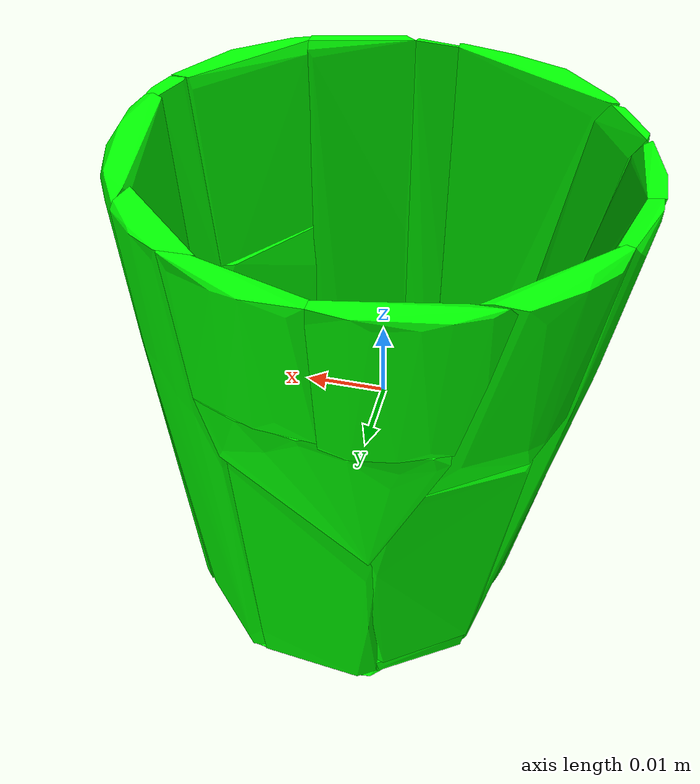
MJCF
<mujoco model="Waterglass">
  <asset>
    <mesh file="meshes/Waterglass/Waterglass_0.stl" name="Waterglass_0" scale="1.3 1.3 1"/>
    <mesh file="meshes/Waterglass/Waterglass_1.stl" name="Waterglass_1" scale="1.3 1.3 1"/>
    <mesh file="meshes/Waterglass/Waterglass_2.stl" name="Waterglass_2" scale="1.3 1.3 1"/>
    <mesh file="meshes/Waterglass/Waterglass_3.stl" name="Waterglass_3" scale="1.3 1.3 1"/>
    <mesh file="meshes/Waterglass/Waterglass_4.stl" name="Waterglass_4" scale="1.3 1.3 1"/>
    <mesh file="meshes/Waterglass/Waterglass_5.stl" name="Waterglass_5" scale="1.3 1.3 1"/>
    <mesh file="meshes/Waterglass/Waterglass_6.stl" name="Waterglass_6" scale="1.3 1.3 1"/>
    <mesh file="meshes/Waterglass/Waterglass_7.stl" name="Waterglass_7" scale="1.3 1.3 1"/>
    <mesh file="meshes/Waterglass/Waterglass_8.stl" name="Waterglass_8" scale="1.3 1.3 1"/>
    <mesh file="meshes/Waterglass/Waterglass_9.stl" name="Waterglass_9" scale="1.3 1.3 1"/>
    <mesh file="meshes/Waterglass/Waterglass_10.stl" name="Waterglass_10" scale="1.3 1.3 1"/>
    <mesh file="meshes/Waterglass/Waterglass_11.stl" name="Waterglass_11" scale="1.3 1.3 1"/>
    <mesh file="meshes/Waterglass/Waterglass_12.stl" name="Waterglass_12" scale="1.3 1.3 1"/>
    <mesh file="meshes/Waterglass/Waterglass_13.stl" name="Waterglass_13" scale="1.3 1.3 1"/>
    <mesh file="meshes/Waterglass/Waterglass_14.stl" name="Waterglass_14" scale="1.3 1.3 1"/>
    <mesh file="meshes/Waterglass/Waterglass_15.stl" name="Waterglass_15" scale="1.3 1.3 1"/>
    <mesh file="meshes/Waterglass/Waterglass_16.stl" name="Waterglass_16" scale="1.3 1.3 1"/>
    <mesh file="meshes/Waterglass/Waterglass_17.stl" name="Waterglass_17" scale="1.3 1.3 1"/>
    <mesh file="meshes/Waterglass/Waterglass_18.stl" name="Waterglass_18" scale="1.3 1.3 1"/>
    <mesh file="meshes/Waterglass/Waterglass_19.stl" name="Waterglass_19" scale="1.3 1.3 1"/>
  </asset>
  <worldbody>
    <body>
      <body name="collision">
        <geom condim="4" density="100" friction="1.8 0.3 0.1" group="1" mesh="Waterglass_0" pos="0 0 0" rgba="0 1 0 1" solimp="0.998 0.998 0.001" solref="0.002 1" type="mesh"/>
        <geom condim="4" density="100" friction="1.8 0.3 0.1" group="1" mesh="Waterglass_1" pos="0 0 0" rgba="0 1 0 1" solimp="0.998 0.998 0.001" solref="0.002 1" type="mesh"/>
        <geom condim="4" density="100" friction="1.8 0.3 0.1" group="1" mesh="Waterglass_2" pos="0 0 0" rgba="0 1 0 1" solimp="0.998 0.998 0.001" solref="0.002 1" type="mesh"/>
        <geom condim="4" density="100" friction="1.8 0.3 0.1" group="1" mesh="Waterglass_3" pos="0 0 0" rgba="0 1 0 1" solimp="0.998 0.998 0.001" solref="0.002 1" type="mesh"/>
        <geom condim="4" density="100" friction="1.8 0.3 0.1" group="1" mesh="Waterglass_4" pos="0 0 0" rgba="0 1 0 1" solimp="0.998 0.998 0.001" solref="0.002 1" type="mesh"/>
        <geom condim="4" density="100" friction="1.8 0.3 0.1" group="1" mesh="Waterglass_5" pos="0 0 0" rgba="0 1 0 1" solimp="0.998 0.998 0.001" solref="0.002 1" type="mesh"/>
        <geom condim="4" density="100" friction="1.8 0.3 0.1" group="1" mesh="Waterglass_6" pos="0 0 0" rgba="0 1 0 1" solimp="0.998 0.998 0.001" solref="0.002 1" type="mesh"/>
        <geom condim="4" density="100" friction="1.8 0.3 0.1" group="1" mesh="Waterglass_7" pos="0 0 0" rgba="0 1 0 1" solimp="0.998 0.998 0.001" solref="0.002 1" type="mesh"/>
        <geom condim="4" density="100" friction="1.8 0.3 0.1" group="1" mesh="Waterglass_8" pos="0 0 0" rgba="0 1 0 1" solimp="0.998 0.998 0.001" solref="0.002 1" type="mesh"/>
        <geom condim="4" density="100" friction="1.8 0.3 0.1" group="1" mesh="Waterglass_9" pos="0 0 0" rgba="0 1 0 1" solimp="0.998 0.998 0.001" solref="0.002 1" type="mesh"/>
        <geom condim="4" density="100" friction="1.8 0.3 0.1" group="1" mesh="Waterglass_10" pos="0 0 0" rgba="0 1 0 1" solimp="0.998 0.998 0.001" solref="0.002 1" type="mesh"/>
        <geom condim="4" density="100" friction="1.8 0.3 0.1" group="1" mesh="Waterglass_11" pos="0 0 0" rgba="0 1 0 1" solimp="0.998 0.998 0.001" solref="0.002 1" type="mesh"/>
        <geom condim="4" density="100" friction="1.8 0.3 0.1" group="1" mesh="Waterglass_12" pos="0 0 0" rgba="0 1 0 1" solimp="0.998 0.998 0.001" solref="0.002 1" type="mesh"/>
        <geom condim="4" density="100" friction="1.8 0.3 0.1" group="1" mesh="Waterglass_13" pos="0 0 0" rgba="0 1 0 1" solimp="0.998 0.998 0.001" solref="0.002 1" type="mesh"/>
        <geom condim="4" density="100" friction="1.8 0.3 0.1" group="1" mesh="Waterglass_14" pos="0 0 0" rgba="0 1 0 1" solimp="0.998 0.998 0.001" solref="0.002 1" type="mesh"/>
        <geom condim="4" density="100" friction="1.8 0.3 0.1" group="1" mesh="Waterglass_15" pos="0 0 0" rgba="0 1 0 1" solimp="0.998 0.998 0.001" solref="0.002 1" type="mesh"/>
        <geom condim="4" density="100" friction="1.8 0.3 0.1" group="1" mesh="Waterglass_16" pos="0 0 0" rgba="0 1 0 1" solimp="0.998 0.998 0.001" solref="0.002 1" type="mesh"/>
        <geom condim="4" density="100" friction="1.8 0.3 0.1" group="1" mesh="Waterglass_17" pos="0 0 0" rgba="0 1 0 1" solimp="0.998 0.998 0.001" solref="0.002 1" type="mesh"/>
        <geom condim="4" density="100" friction="1.8 0.3 0.1" group="1" mesh="Waterglass_18" pos="0 0 0" rgba="0 1 0 1" solimp="0.998 0.998 0.001" solref="0.002 1" type="mesh"/>
        <geom condim="4" density="100" friction="1.8 0.3 0.1" group="1" mesh="Waterglass_19" pos="0 0 0" rgba="0 1 0 1" solimp="0.998 0.998 0.001" solref="0.002 1" type="mesh"/>
      </body>
      <body name="visual">
        <geom conaffinity="0" contype="0" group="0" mass="0.0001" mesh="Waterglass_0" pos="0 0 0" rgba="0 1 0 1" type="mesh"/>
        <geom conaffinity="0" contype="0" group="0" mass="0.0001" mesh="Waterglass_1" pos="0 0 0" rgba="0 1 0 1" type="mesh"/>
        <geom conaffinity="0" contype="0" group="0" mass="0.0001" mesh="Waterglass_2" pos="0 0 0" rgba="0 1 0 1" type="mesh"/>
        <geom conaffinity="0" contype="0" group="0" mass="0.0001" mesh="Waterglass_3" pos="0 0 0" rgba="0 1 0 1" type="mesh"/>
        <geom conaffinity="0" contype="0" group="0" mass="0.0001" mesh="Waterglass_4" pos="0 0 0" rgba="0 1 0 1" type="mesh"/>
        <geom conaffinity="0" contype="0" group="0" mass="0.0001" mesh="Waterglass_5" pos="0 0 0" rgba="0 1 0 1" type="mesh"/>
        <geom conaffinity="0" contype="0" group="0" mass="0.0001" mesh="Waterglass_6" pos="0 0 0" rgba="0 1 0 1" type="mesh"/>
        <geom conaffinity="0" contype="0" group="0" mass="0.0001" mesh="Waterglass_7" pos="0 0 0" rgba="0 1 0 1" type="mesh"/>
        <geom conaffinity="0" contype="0" group="0" mass="0.0001" mesh="Waterglass_8" pos="0 0 0" rgba="0 1 0 1" type="mesh"/>
        <geom conaffinity="0" contype="0" group="0" mass="0.0001" mesh="Waterglass_9" pos="0 0 0" rgba="0 1 0 1" type="mesh"/>
        <geom conaffinity="0" contype="0" group="0" mass="0.0001" mesh="Waterglass_10" pos="0 0 0" rgba="0 1 0 1" type="mesh"/>
        <geom conaffinity="0" contype="0" group="0" mass="0.0001" mesh="Waterglass_11" pos="0 0 0" rgba="0 1 0 1" type="mesh"/>
        <geom conaffinity="0" contype="0" group="0" mass="0.0001" mesh="Waterglass_12" pos="0 0 0" rgba="0 1 0 1" type="mesh"/>
        <geom conaffinity="0" contype="0" group="0" mass="0.0001" mesh="Waterglass_13" pos="0 0 0" rgba="0 1 0 1" type="mesh"/>
        <geom conaffinity="0" contype="0" group="0" mass="0.0001" mesh="Waterglass_14" pos="0 0 0" rgba="0 1 0 1" type="mesh"/>
        <geom conaffinity="0" contype="0" group="0" mass="0.0001" mesh="Waterglass_15" pos="0 0 0" rgba="0 1 0 1" type="mesh"/>
        <geom conaffinity="0" contype="0" group="0" mass="0.0001" mesh="Waterglass_16" pos="0 0 0" rgba="0 1 0 1" type="mesh"/>
        <geom conaffinity="0" contype="0" group="0" mass="0.0001" mesh="Waterglass_17" pos="0 0 0" rgba="0 1 0 1" type="mesh"/>
        <geom conaffinity="0" contype="0" group="0" mass="0.0001" mesh="Waterglass_18" pos="0 0 0" rgba="0 1 0 1" type="mesh"/>
        <geom conaffinity="0" contype="0" group="0" mass="0.0001" mesh="Waterglass_19" pos="0 0 0" rgba="0 1 0 1" type="mesh"/>
      </body>
      <site name="bottom_site" pos="0 0 -0.06" rgba="0 0 0 0" size="0.005"/>
      <site name="top_site" pos="0 0 0.04" rgba="0 0 0 0" size="0.005"/>
      <site name="horizontal_radius_site" pos="0.025 0.025 0" rgba="0 0 0 0" size="0.005"/>
    </body>
  </worldbody>
</mujoco>
